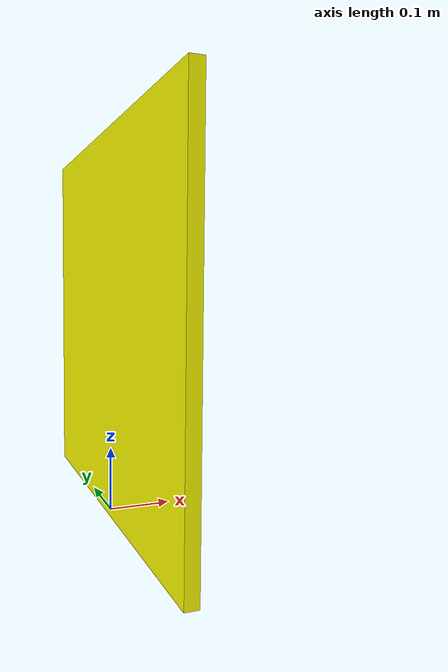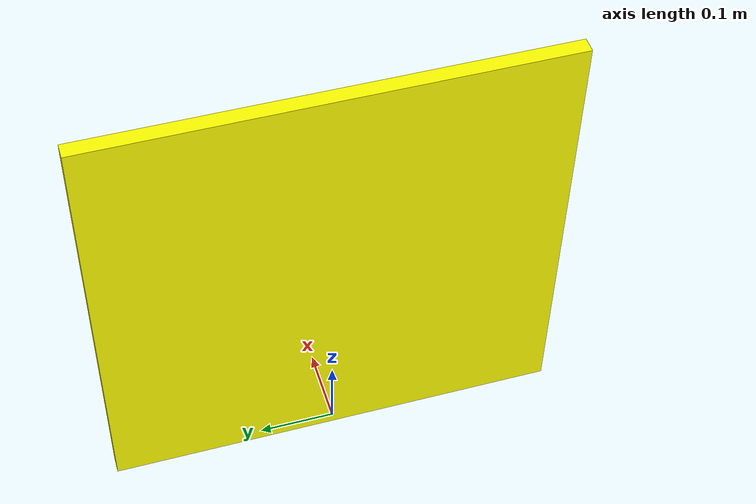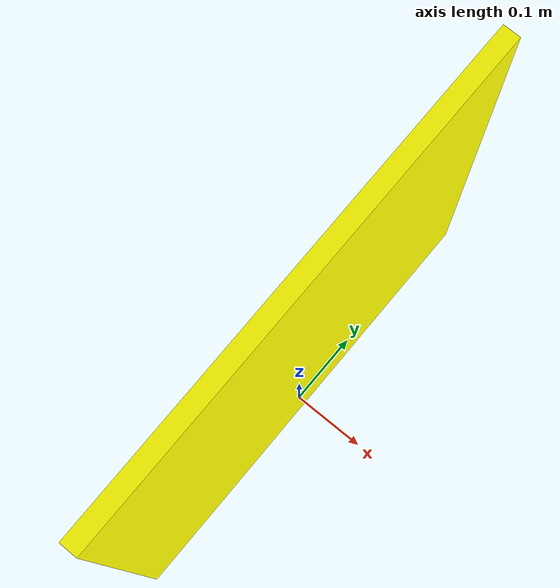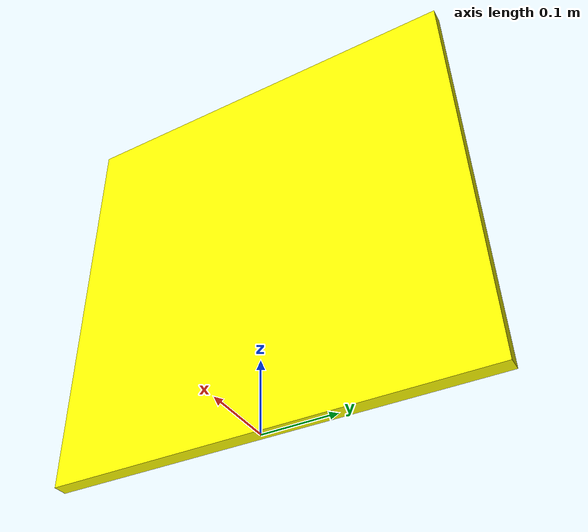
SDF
<?xml version="1.0" ?>
<sdf version="1.5">
  <model name="ra_wall_yellow">
    <static>True</static>
    <link name="link">
      <collision name="collision">
        <pose>0 0 0.3  0 0 0</pose>
        <geometry>
          <box>
            <size>0.02 0.6 0.6</size>
          </box>
        </geometry>
      </collision>
      <visual name="visual">
        <pose>0 0 0.3  0 0 0</pose>
        <geometry>
          <box>
            <size>0.02 0.6 0.6</size>
          </box>
        </geometry>
        <material>
          <ambient>1 1 0 1</ambient>
          <diffuse>1 1 0 1</diffuse>
          <specular>0.1 0.1 0.1 1</specular>
        </material>
      </visual>
    </link>
  </model>
</sdf>
